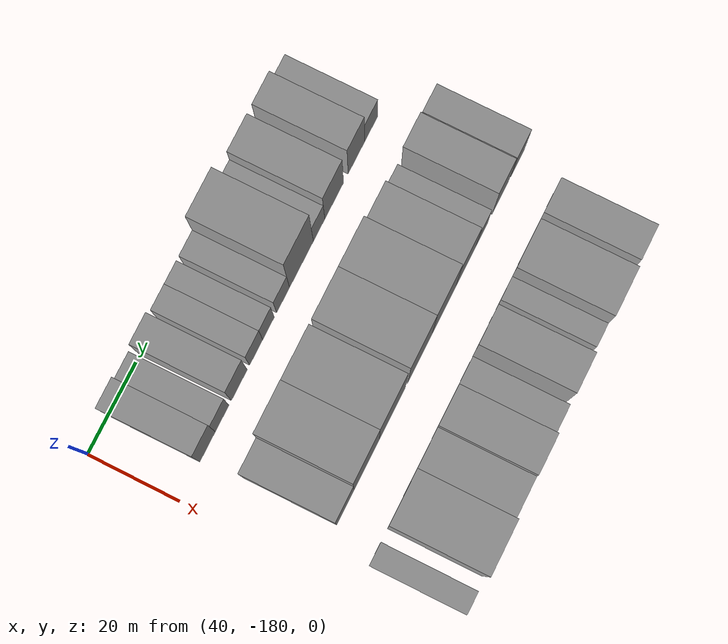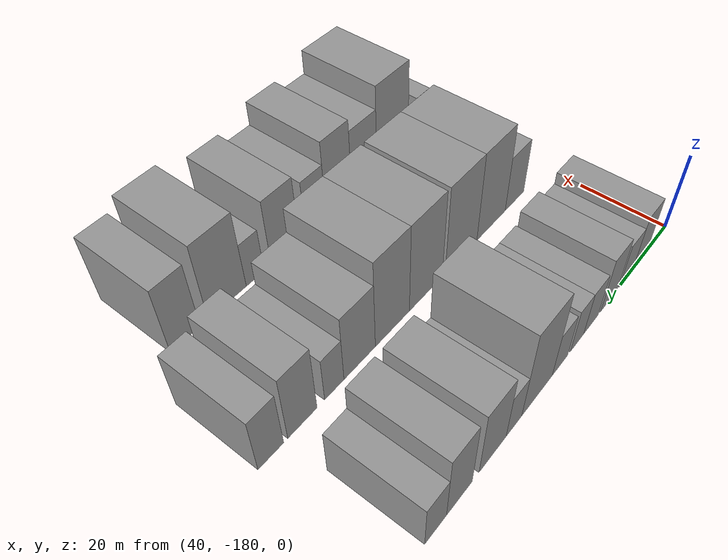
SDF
<sdf version="1.6">
 <world name="default">
  <model name="building_20">
   <static>1</static>
   <pose>50.0000 -168.3583 0 0.000000 0.000000 0.000000</pose>
   <link name="link">
    <pose>0 0 7.50 0 0 0</pose>
    <collision name="collision"><geometry><box><size>20.0000 6.5018 15.0000</size></box></geometry></collision>
    <visual name="visual">
     <cast_shadows>0</cast_shadows>
     <geometry><box><size>20.0000 6.5018 15.0000</size></box></geometry>
     <material>
      <script>
       <uri>model://grey_wall/materials/scripts</uri>
       <uri>model://grey_wall/materials/textures</uri>
       <name>vrc/grey_wall</name>
      </script>
     </material>
    </visual>
   </link>
  </model>
  <model name="building_21">
   <static>1</static>
   <pose>50.0000 -162.2351 0 0.000000 0.000000 0.000000</pose>
   <link name="link">
    <pose>0 0 6.00 0 0 0</pose>
    <collision name="collision"><geometry><box><size>20.0000 5.7445 12.0000</size></box></geometry></collision>
    <visual name="visual">
     <cast_shadows>0</cast_shadows>
     <geometry><box><size>20.0000 5.7445 12.0000</size></box></geometry>
     <material>
      <script>
       <uri>model://grey_wall/materials/scripts</uri>
       <uri>model://grey_wall/materials/textures</uri>
       <name>vrc/grey_wall</name>
      </script>
     </material>
    </visual>
   </link>
  </model>
  <model name="building_22">
   <static>1</static>
   <pose>50.0000 -154.9990 0 0.000000 0.000000 0.000000</pose>
   <link name="link">
    <pose>0 0 7.50 0 0 0</pose>
    <collision name="collision"><geometry><box><size>20.0000 6.7277 15.0000</size></box></geometry></collision>
    <visual name="visual">
     <cast_shadows>0</cast_shadows>
     <geometry><box><size>20.0000 6.7277 15.0000</size></box></geometry>
     <material>
      <script>
       <uri>model://grey_wall/materials/scripts</uri>
       <uri>model://grey_wall/materials/textures</uri>
       <name>vrc/grey_wall</name>
      </script>
     </material>
    </visual>
   </link>
  </model>
  <model name="building_23">
   <static>1</static>
   <pose>50.0000 -147.8315 0 0.000000 0.000000 0.000000</pose>
   <link name="link">
    <pose>0 0 6.00 0 0 0</pose>
    <collision name="collision"><geometry><box><size>20.0000 5.6074 12.0000</size></box></geometry></collision>
    <visual name="visual">
     <cast_shadows>0</cast_shadows>
     <geometry><box><size>20.0000 5.6074 12.0000</size></box></geometry>
     <material>
      <script>
       <uri>model://grey_wall/materials/scripts</uri>
       <uri>model://grey_wall/materials/textures</uri>
       <name>vrc/grey_wall</name>
      </script>
     </material>
    </visual>
   </link>
  </model>
  <model name="building_24">
   <static>1</static>
   <pose>50.0000 -142.5548 0 0.000000 0.000000 0.000000</pose>
   <link name="link">
    <pose>0 0 6.00 0 0 0</pose>
    <collision name="collision"><geometry><box><size>20.0000 4.9459 12.0000</size></box></geometry></collision>
    <visual name="visual">
     <cast_shadows>0</cast_shadows>
     <geometry><box><size>20.0000 4.9459 12.0000</size></box></geometry>
     <material>
      <script>
       <uri>model://grey_wall/materials/scripts</uri>
       <uri>model://grey_wall/materials/textures</uri>
       <name>vrc/grey_wall</name>
      </script>
     </material>
    </visual>
   </link>
  </model>
  <model name="building_25">
   <static>1</static>
   <pose>50.0000 -136.3060 0 0.000000 0.000000 0.000000</pose>
   <link name="link">
    <pose>0 0 6.00 0 0 0</pose>
    <collision name="collision"><geometry><box><size>20.0000 5.5518 12.0000</size></box></geometry></collision>
    <visual name="visual">
     <cast_shadows>0</cast_shadows>
     <geometry><box><size>20.0000 5.5518 12.0000</size></box></geometry>
     <material>
      <script>
       <uri>model://grey_wall/materials/scripts</uri>
       <uri>model://grey_wall/materials/textures</uri>
       <name>vrc/grey_wall</name>
      </script>
     </material>
    </visual>
   </link>
  </model>
  <model name="building_26">
   <static>1</static>
   <pose>50.0000 -128.3769 0 0.000000 0.000000 0.000000</pose>
   <link name="link">
    <pose>0 0 12.00 0 0 0</pose>
    <collision name="collision"><geometry><box><size>20.0000 10.3064 24.0000</size></box></geometry></collision>
    <visual name="visual">
     <cast_shadows>0</cast_shadows>
     <geometry><box><size>20.0000 10.3064 24.0000</size></box></geometry>
     <material>
      <script>
       <uri>model://grey_wall/materials/scripts</uri>
       <uri>model://grey_wall/materials/textures</uri>
       <name>vrc/grey_wall</name>
      </script>
     </material>
    </visual>
   </link>
  </model>
  <model name="building_27">
   <static>1</static>
   <pose>50.0000 -120.7325 0 0.000000 0.000000 0.000000</pose>
   <link name="link">
    <pose>0 0 6.00 0 0 0</pose>
    <collision name="collision"><geometry><box><size>20.0000 4.9823 12.0000</size></box></geometry></collision>
    <visual name="visual">
     <cast_shadows>0</cast_shadows>
     <geometry><box><size>20.0000 4.9823 12.0000</size></box></geometry>
     <material>
      <script>
       <uri>model://grey_wall/materials/scripts</uri>
       <uri>model://grey_wall/materials/textures</uri>
       <name>vrc/grey_wall</name>
      </script>
     </material>
    </visual>
   </link>
  </model>
  <model name="building_28">
   <static>1</static>
   <pose>50.0000 -114.1431 0 0.000000 0.000000 0.000000</pose>
   <link name="link">
    <pose>0 0 9.00 0 0 0</pose>
    <collision name="collision"><geometry><box><size>20.0000 8.1966 18.0000</size></box></geometry></collision>
    <visual name="visual">
     <cast_shadows>0</cast_shadows>
     <geometry><box><size>20.0000 8.1966 18.0000</size></box></geometry>
     <material>
      <script>
       <uri>model://grey_wall/materials/scripts</uri>
       <uri>model://grey_wall/materials/textures</uri>
       <name>vrc/grey_wall</name>
      </script>
     </material>
    </visual>
   </link>
  </model>
  <model name="building_29">
   <static>1</static>
   <pose>50.0000 -104.4362 0 0.000000 0.000000 0.000000</pose>
   <link name="link">
    <pose>0 0 9.00 0 0 0</pose>
    <collision name="collision"><geometry><box><size>20.0000 7.2170 18.0000</size></box></geometry></collision>
    <visual name="visual">
     <cast_shadows>0</cast_shadows>
     <geometry><box><size>20.0000 7.2170 18.0000</size></box></geometry>
     <material>
      <script>
       <uri>model://grey_wall/materials/scripts</uri>
       <uri>model://grey_wall/materials/textures</uri>
       <name>vrc/grey_wall</name>
      </script>
     </material>
    </visual>
   </link>
  </model>
  <model name="building_30">
   <static>1</static>
   <pose>50.0000 -97.9253 0 0.000000 0.000000 0.000000</pose>
   <link name="link">
    <pose>0 0 6.00 0 0 0</pose>
    <collision name="collision"><geometry><box><size>20.0000 5.8047 12.0000</size></box></geometry></collision>
    <visual name="visual">
     <cast_shadows>0</cast_shadows>
     <geometry><box><size>20.0000 5.8047 12.0000</size></box></geometry>
     <material>
      <script>
       <uri>model://grey_wall/materials/scripts</uri>
       <uri>model://grey_wall/materials/textures</uri>
       <name>vrc/grey_wall</name>
      </script>
     </material>
    </visual>
   </link>
  </model>
  <model name="building_104">
   <static>1</static>
   <pose>79.0000 -166.8739 0 0.000000 0.000000 0.000000</pose>
   <link name="link">
    <pose>0 0 7.50 0 0 0</pose>
    <collision name="collision"><geometry><box><size>20.0000 7.4451 15.0000</size></box></geometry></collision>
    <visual name="visual">
     <cast_shadows>0</cast_shadows>
     <geometry><box><size>20.0000 7.4451 15.0000</size></box></geometry>
     <material>
      <script>
       <uri>model://grey_wall/materials/scripts</uri>
       <uri>model://grey_wall/materials/textures</uri>
       <name>vrc/grey_wall</name>
      </script>
     </material>
    </visual>
   </link>
  </model>
  <model name="building_105">
   <static>1</static>
   <pose>79.0000 -157.7465 0 0.000000 0.000000 0.000000</pose>
   <link name="link">
    <pose>0 0 12.00 0 0 0</pose>
    <collision name="collision"><geometry><box><size>20.0000 10.8097 24.0000</size></box></geometry></collision>
    <visual name="visual">
     <cast_shadows>0</cast_shadows>
     <geometry><box><size>20.0000 10.8097 24.0000</size></box></geometry>
     <material>
      <script>
       <uri>model://grey_wall/materials/scripts</uri>
       <uri>model://grey_wall/materials/textures</uri>
       <name>vrc/grey_wall</name>
      </script>
     </material>
    </visual>
   </link>
  </model>
  <model name="building_106">
   <static>1</static>
   <pose>79.0000 -146.7037 0 0.000000 0.000000 0.000000</pose>
   <link name="link">
    <pose>0 0 12.00 0 0 0</pose>
    <collision name="collision"><geometry><box><size>20.0000 11.2759 24.0000</size></box></geometry></collision>
    <visual name="visual">
     <cast_shadows>0</cast_shadows>
     <geometry><box><size>20.0000 11.2759 24.0000</size></box></geometry>
     <material>
      <script>
       <uri>model://grey_wall/materials/scripts</uri>
       <uri>model://grey_wall/materials/textures</uri>
       <name>vrc/grey_wall</name>
      </script>
     </material>
    </visual>
   </link>
  </model>
  <model name="building_107">
   <static>1</static>
   <pose>79.0000 -134.6678 0 0.000000 0.000000 0.000000</pose>
   <link name="link">
    <pose>0 0 12.00 0 0 0</pose>
    <collision name="collision"><geometry><box><size>20.0000 10.7960 24.0000</size></box></geometry></collision>
    <visual name="visual">
     <cast_shadows>0</cast_shadows>
     <geometry><box><size>20.0000 10.7960 24.0000</size></box></geometry>
     <material>
      <script>
       <uri>model://grey_wall/materials/scripts</uri>
       <uri>model://grey_wall/materials/textures</uri>
       <name>vrc/grey_wall</name>
      </script>
     </material>
    </visual>
   </link>
  </model>
  <model name="building_108">
   <static>1</static>
   <pose>79.0000 -124.0740 0 0.000000 0.000000 0.000000</pose>
   <link name="link">
    <pose>0 0 12.00 0 0 0</pose>
    <collision name="collision"><geometry><box><size>20.0000 10.3915 24.0000</size></box></geometry></collision>
    <visual name="visual">
     <cast_shadows>0</cast_shadows>
     <geometry><box><size>20.0000 10.3915 24.0000</size></box></geometry>
     <material>
      <script>
       <uri>model://grey_wall/materials/scripts</uri>
       <uri>model://grey_wall/materials/textures</uri>
       <name>vrc/grey_wall</name>
      </script>
     </material>
    </visual>
   </link>
  </model>
  <model name="building_109">
   <static>1</static>
   <pose>79.0000 -114.3984 0 0.000000 0.000000 0.000000</pose>
   <link name="link">
    <pose>0 0 9.00 0 0 0</pose>
    <collision name="collision"><geometry><box><size>20.0000 8.9598 18.0000</size></box></geometry></collision>
    <visual name="visual">
     <cast_shadows>0</cast_shadows>
     <geometry><box><size>20.0000 8.9598 18.0000</size></box></geometry>
     <material>
      <script>
       <uri>model://grey_wall/materials/scripts</uri>
       <uri>model://grey_wall/materials/textures</uri>
       <name>vrc/grey_wall</name>
      </script>
     </material>
    </visual>
   </link>
  </model>
  <model name="building_110">
   <static>1</static>
   <pose>79.0000 -107.3000 0 0.000000 0.000000 0.000000</pose>
   <link name="link">
    <pose>0 0 6.00 0 0 0</pose>
    <collision name="collision"><geometry><box><size>20.0000 5.2370 12.0000</size></box></geometry></collision>
    <visual name="visual">
     <cast_shadows>0</cast_shadows>
     <geometry><box><size>20.0000 5.2370 12.0000</size></box></geometry>
     <material>
      <script>
       <uri>model://grey_wall/materials/scripts</uri>
       <uri>model://grey_wall/materials/textures</uri>
       <name>vrc/grey_wall</name>
      </script>
     </material>
    </visual>
   </link>
  </model>
  <model name="building_111">
   <static>1</static>
   <pose>79.0000 -98.9500 0 0.000000 0.000000 0.000000</pose>
   <link name="link">
    <pose>0 0 9.00 0 0 0</pose>
    <collision name="collision"><geometry><box><size>20.0000 7.4631 18.0000</size></box></geometry></collision>
    <visual name="visual">
     <cast_shadows>0</cast_shadows>
     <geometry><box><size>20.0000 7.4631 18.0000</size></box></geometry>
     <material>
      <script>
       <uri>model://grey_wall/materials/scripts</uri>
       <uri>model://grey_wall/materials/textures</uri>
       <name>vrc/grey_wall</name>
      </script>
     </material>
    </visual>
   </link>
  </model>
  <model name="building_112">
   <static>1</static>
   <pose>79.0000 -91.1295 0 0.000000 0.000000 0.000000</pose>
   <link name="link">
    <pose>0 0 7.50 0 0 0</pose>
    <collision name="collision"><geometry><box><size>20.0000 6.1778 15.0000</size></box></geometry></collision>
    <visual name="visual">
     <cast_shadows>0</cast_shadows>
     <geometry><box><size>20.0000 6.1778 15.0000</size></box></geometry>
     <material>
      <script>
       <uri>model://grey_wall/materials/scripts</uri>
       <uri>model://grey_wall/materials/textures</uri>
       <name>vrc/grey_wall</name>
      </script>
     </material>
    </visual>
   </link>
  </model>
  <model name="building_175">
   <static>1</static>
   <pose>108.0000 -172.2790 0 0.000000 0.000000 0.000000</pose>
   <link name="link">
    <pose>0 0 6.00 0 0 0</pose>
    <collision name="collision"><geometry><box><size>20.0000 4.8412 12.0000</size></box></geometry></collision>
    <visual name="visual">
     <cast_shadows>0</cast_shadows>
     <geometry><box><size>20.0000 4.8412 12.0000</size></box></geometry>
     <material>
      <script>
       <uri>model://grey_wall/materials/scripts</uri>
       <uri>model://grey_wall/materials/textures</uri>
       <name>vrc/grey_wall</name>
      </script>
     </material>
    </visual>
   </link>
  </model>
  <model name="building_176">
   <static>1</static>
   <pose>108.0000 -161.1571 0 0.000000 0.000000 0.000000</pose>
   <link name="link">
    <pose>0 0 12.00 0 0 0</pose>
    <collision name="collision"><geometry><box><size>20.0000 11.4026 24.0000</size></box></geometry></collision>
    <visual name="visual">
     <cast_shadows>0</cast_shadows>
     <geometry><box><size>20.0000 11.4026 24.0000</size></box></geometry>
     <material>
      <script>
       <uri>model://grey_wall/materials/scripts</uri>
       <uri>model://grey_wall/materials/textures</uri>
       <name>vrc/grey_wall</name>
      </script>
     </material>
    </visual>
   </link>
  </model>
  <model name="building_177">
   <static>1</static>
   <pose>108.0000 -151.0871 0 0.000000 0.000000 0.000000</pose>
   <link name="link">
    <pose>0 0 9.00 0 0 0</pose>
    <collision name="collision"><geometry><box><size>20.0000 8.7373 18.0000</size></box></geometry></collision>
    <visual name="visual">
     <cast_shadows>0</cast_shadows>
     <geometry><box><size>20.0000 8.7373 18.0000</size></box></geometry>
     <material>
      <script>
       <uri>model://grey_wall/materials/scripts</uri>
       <uri>model://grey_wall/materials/textures</uri>
       <name>vrc/grey_wall</name>
      </script>
     </material>
    </visual>
   </link>
  </model>
  <model name="building_178">
   <static>1</static>
   <pose>108.0000 -142.4758 0 0.000000 0.000000 0.000000</pose>
   <link name="link">
    <pose>0 0 10.50 0 0 0</pose>
    <collision name="collision"><geometry><box><size>20.0000 8.4852 21.0000</size></box></geometry></collision>
    <visual name="visual">
     <cast_shadows>0</cast_shadows>
     <geometry><box><size>20.0000 8.4852 21.0000</size></box></geometry>
     <material>
      <script>
       <uri>model://grey_wall/materials/scripts</uri>
       <uri>model://grey_wall/materials/textures</uri>
       <name>vrc/grey_wall</name>
      </script>
     </material>
    </visual>
   </link>
  </model>
  <model name="building_179">
   <static>1</static>
   <pose>108.0000 -135.0154 0 0.000000 0.000000 0.000000</pose>
   <link name="link">
    <pose>0 0 7.50 0 0 0</pose>
    <collision name="collision"><geometry><box><size>20.0000 6.4356 15.0000</size></box></geometry></collision>
    <visual name="visual">
     <cast_shadows>0</cast_shadows>
     <geometry><box><size>20.0000 6.4356 15.0000</size></box></geometry>
     <material>
      <script>
       <uri>model://grey_wall/materials/scripts</uri>
       <uri>model://grey_wall/materials/textures</uri>
       <name>vrc/grey_wall</name>
      </script>
     </material>
    </visual>
   </link>
  </model>
  <model name="building_180">
   <static>1</static>
   <pose>108.0000 -125.6050 0 0.000000 0.000000 0.000000</pose>
   <link name="link">
    <pose>0 0 9.00 0 0 0</pose>
    <collision name="collision"><geometry><box><size>20.0000 8.3851 18.0000</size></box></geometry></collision>
    <visual name="visual">
     <cast_shadows>0</cast_shadows>
     <geometry><box><size>20.0000 8.3851 18.0000</size></box></geometry>
     <material>
      <script>
       <uri>model://grey_wall/materials/scripts</uri>
       <uri>model://grey_wall/materials/textures</uri>
       <name>vrc/grey_wall</name>
      </script>
     </material>
    </visual>
   </link>
  </model>
  <model name="building_181">
   <static>1</static>
   <pose>108.0000 -116.9038 0 0.000000 0.000000 0.000000</pose>
   <link name="link">
    <pose>0 0 6.00 0 0 0</pose>
    <collision name="collision"><geometry><box><size>20.0000 5.0173 12.0000</size></box></geometry></collision>
    <visual name="visual">
     <cast_shadows>0</cast_shadows>
     <geometry><box><size>20.0000 5.0173 12.0000</size></box></geometry>
     <material>
      <script>
       <uri>model://grey_wall/materials/scripts</uri>
       <uri>model://grey_wall/materials/textures</uri>
       <name>vrc/grey_wall</name>
      </script>
     </material>
    </visual>
   </link>
  </model>
  <model name="building_182">
   <static>1</static>
   <pose>108.0000 -109.2731 0 0.000000 0.000000 0.000000</pose>
   <link name="link">
    <pose>0 0 10.50 0 0 0</pose>
    <collision name="collision"><geometry><box><size>20.0000 10.2441 21.0000</size></box></geometry></collision>
    <visual name="visual">
     <cast_shadows>0</cast_shadows>
     <geometry><box><size>20.0000 10.2441 21.0000</size></box></geometry>
     <material>
      <script>
       <uri>model://grey_wall/materials/scripts</uri>
       <uri>model://grey_wall/materials/textures</uri>
       <name>vrc/grey_wall</name>
      </script>
     </material>
    </visual>
   </link>
  </model>
  <model name="building_183">
   <static>1</static>
   <pose>108.0000 -98.4318 0 0.000000 0.000000 0.000000</pose>
   <link name="link">
    <pose>0 0 9.00 0 0 0</pose>
    <collision name="collision"><geometry><box><size>20.0000 7.4384 18.0000</size></box></geometry></collision>
    <visual name="visual">
     <cast_shadows>0</cast_shadows>
     <geometry><box><size>20.0000 7.4384 18.0000</size></box></geometry>
     <material>
      <script>
       <uri>model://grey_wall/materials/scripts</uri>
       <uri>model://grey_wall/materials/textures</uri>
       <name>vrc/grey_wall</name>
      </script>
     </material>
    </visual>
   </link>
  </model>
 </world>
</sdf>
